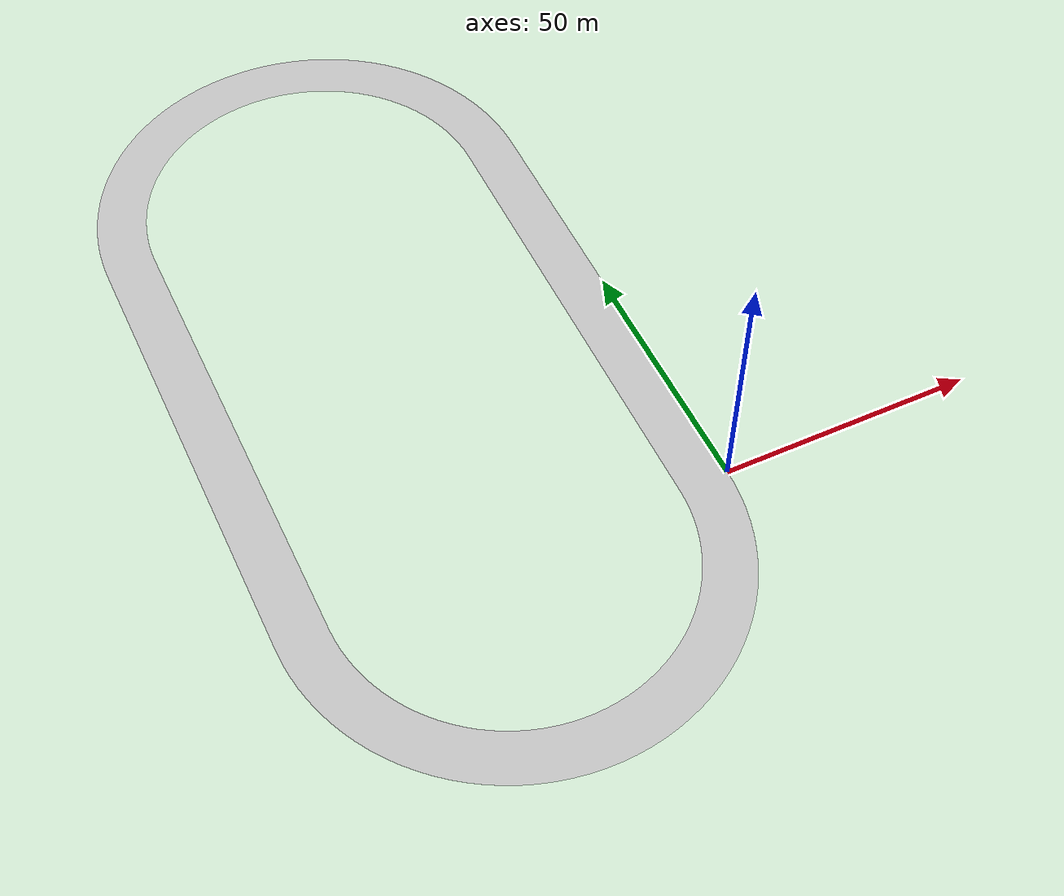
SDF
<?xml version="1.0"?>
<sdf version="1.9">
  <!-- Smooth red 8-lane track; materials are embedded in the OBJ/MTL. -->
  <model name="drone_cju_track_running_track">
    <static>true</static>
    <link name="track_link">
      <visual name="continuous_red_surface">
        <pose>0 0 0 0 0 0</pose>
        <cast_shadows>false</cast_shadows>
        <geometry><mesh><uri>model://drone_cju_track_running_track/meshes/running_track_surface.obj</uri><scale>1 1 1</scale></mesh></geometry>
      </visual>
    </link>
  </model>
</sdf>
